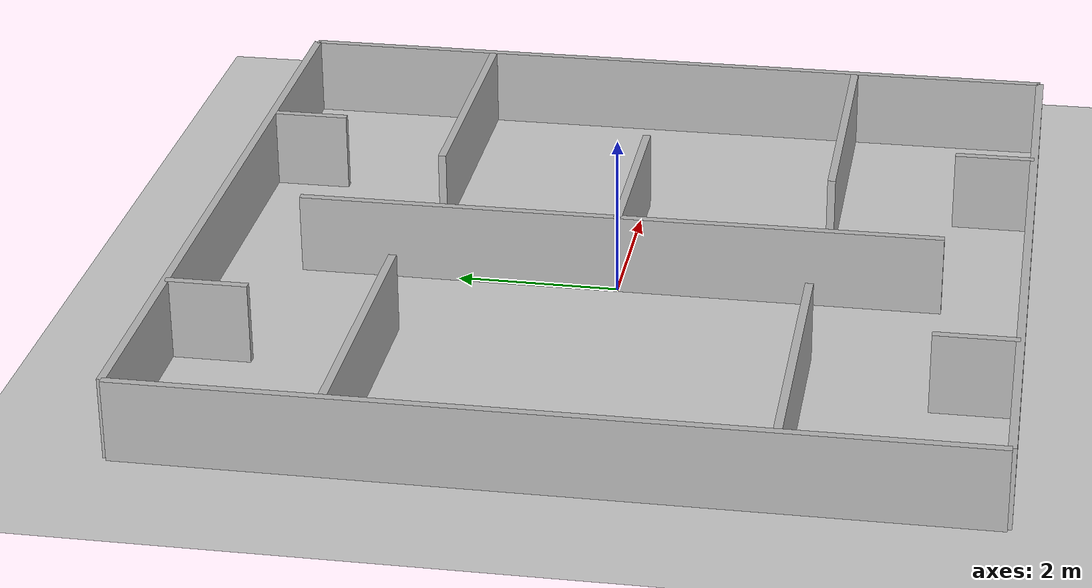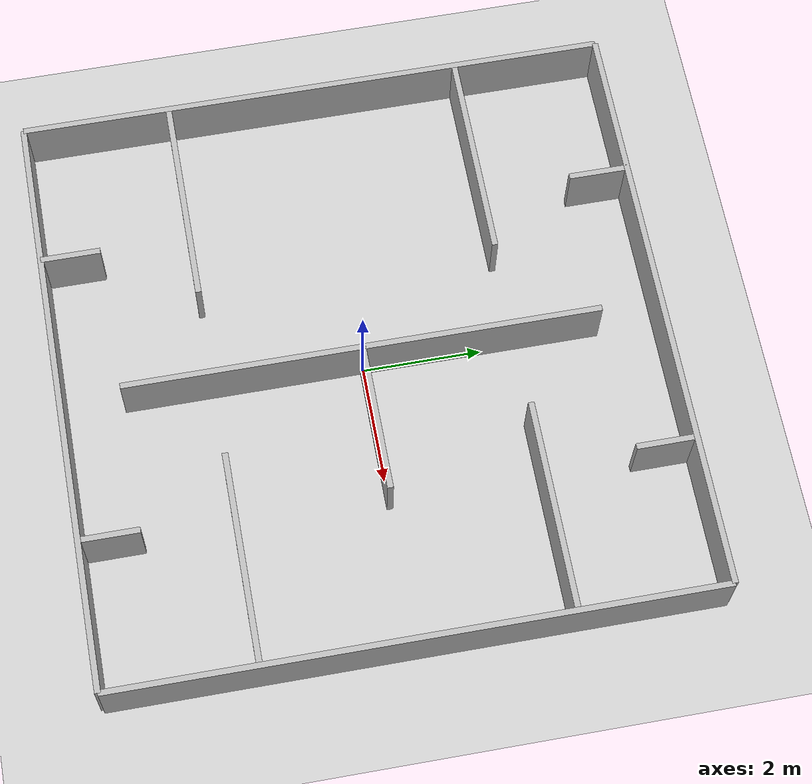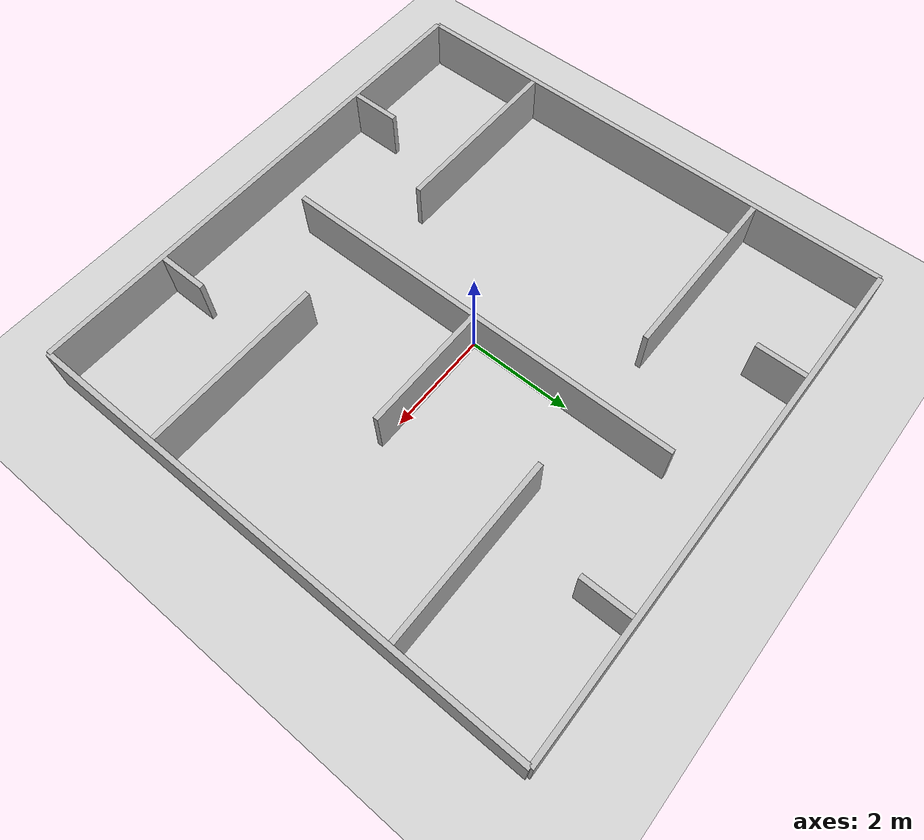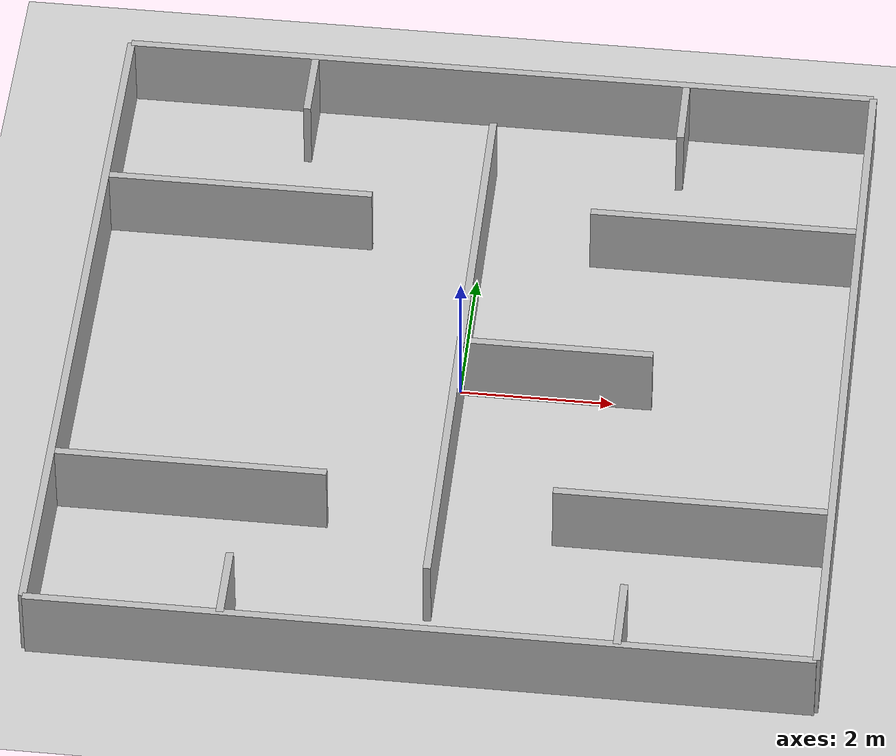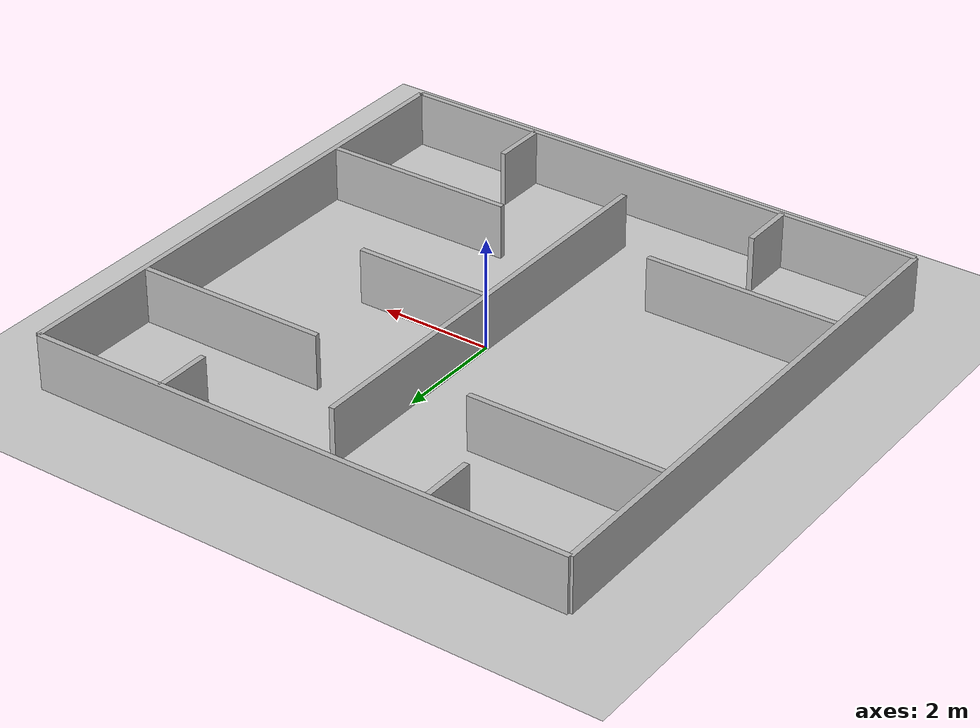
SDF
<?xml version="1.0" ?>
<sdf version="1.8">
<!-- A simple maze world for tag team-->

  <world name="simple_maze">
    <!--Physics and plugins copied from turtlebot3_world.world-->
    <physics type="ode">
      <real_time_update_rate>1000.0</real_time_update_rate>
      <max_step_size>0.001</max_step_size>
      <real_time_factor>1</real_time_factor>
      <ode>
        <solver>
          <type>quick</type>
          <iters>150</iters>
          <precon_iters>0</precon_iters>
          <sor>1.400000</sor>
          <use_dynamic_moi_rescaling>1</use_dynamic_moi_rescaling>
        </solver>
        <constraints>
          <cfm>0.00001</cfm>
          <erp>0.2</erp>
          <contact_max_correcting_vel>2000.000000</contact_max_correcting_vel>
          <contact_surface_layer>0.01000</contact_surface_layer>
        </constraints>
      </ode>
    </physics>
    <plugin
      filename="gz-sim-physics-system"
      name="gz::sim::systems::Physics">
    </plugin>
    <plugin
      filename="gz-sim-user-commands-system"
      name="gz::sim::systems::UserCommands">
    </plugin>
    <plugin
      filename="gz-sim-scene-broadcaster-system"
      name="gz::sim::systems::SceneBroadcaster">
    </plugin>
    <plugin
      filename="gz-sim-sensors-system"
      name="gz::sim::systems::Sensors">
      <render_engine>ogre2</render_engine>
    </plugin>
    <plugin
      filename="gz-sim-imu-system"
      name="gz::sim::systems::Imu">
    </plugin>
    <include>
      <uri>https://fuel.gazebosim.org/1.0/OpenRobotics/models/Sun</uri>
    </include>
    <include>
      <uri>https://fuel.gazebosim.org/1.0/OpenRobotics/models/Ground Plane</uri>
    </include>

    <model name="maze_walls">
      <static>1</static>

      <link name="wall_north">
        <pose>0 5 0.5 0 0 0</pose>
        <visual name="visual"><geometry><box><size>10 0.1 1</size></box></geometry></visual>
        <collision name="collision"><geometry><box><size>10 0.1 1</size></box></geometry></collision>
      </link>
      <link name="wall_south">
        <pose>0 -5 0.5 0 0 0</pose>
        <visual name="visual"><geometry><box><size>10 0.1 1</size></box></geometry></visual>
        <collision name="collision"><geometry><box><size>10 0.1 1</size></box></geometry></collision>
      </link>
      <link name="wall_east">
        <pose>5 0 0.5 0 0 0</pose>
        <visual name="visual"><geometry><box><size>0.1 10 1</size></box></geometry></visual>
        <collision name="collision"><geometry><box><size>0.1 10 1</size></box></geometry></collision>
      </link>
      <link name="wall_west">
        <pose>-5 0 0.5 0 0 0</pose>
        <visual name="visual"><geometry><box><size>0.1 10 1</size></box></geometry></visual>
        <collision name="collision"><geometry><box><size>0.1 10 1</size></box></geometry></collision>
      </link>
      <!--pose -3 . .   and size  4  .  . was too tight-->
      <link name="inner_wall_horiz_top_L">
        <pose>-3.2 2.5 0.5 0 0 0</pose>      <visual name="visual">
          <geometry><box><size>3.5 0.1 1</size></box></geometry> </visual>
        <collision name="collision">
          <geometry><box><size>3.5 0.1 1</size></box></geometry>
        </collision>
      </link>

      <link name="inner_wall_horiz_middle">
        <pose> 1.25 0 0.5 0 0 0</pose>     <visual name="visual">
          <geometry><box><size>2.5 0.1 1</size></box></geometry> </visual>
        <collision name="collision">
          <geometry><box><size>2.5 0.1 1</size></box></geometry>
        </collision>
      </link>
      <!--pose 3 . .   and size  4  .  . was too tight-->
      <link name="inner_wall_horiz_top_R">
        <pose>3.2 2.5 0.5 0 0 0</pose>       <visual name="visual">
          <geometry><box><size>3.5 0.1 1</size></box></geometry> </visual>
        <collision name="collision">
          <geometry><box><size>3.5 0.1 1</size></box></geometry>
        </collision>
      </link>
      <!--pose -3 . .   and size  4  .  . was too tight-->
      <link name="inner_wall_horiz_bottom_L">
        <pose>-3.2 -2.5 0.5 0 0 0</pose>     <visual name="visual">
          <geometry><box><size>3.5 0.1 1</size></box></geometry>
        </visual>
        <collision name="collision">
          <geometry><box><size>3.5 0.1 1</size></box></geometry>
        </collision>
      </link>
      <!--pose 3 . .   and size  4  .  . was too tight-->
      <link name="inner_wall_horiz_bottom_R">
        <pose>3.2 -2.5 0.5 0 0 0</pose>      <visual name="visual">
          <geometry><box><size>3.5 0.1 1</size></box></geometry>
        </visual>
        <collision name="collision">
          <geometry><box><size>3.5 0.1 1</size></box></geometry>
        </collision>
      </link>
      <!--pose . 4.2 .   and size . 1.5  . was too tight-->
      <link name="inner_wall_vert_left_T">
        <pose>-2.5 4.5 0.5 0 0 0</pose>      <visual name="visual">
          <geometry><box><size>0.1 1 1</size></box></geometry> </visual>
        <collision name="collision">
          <geometry><box><size>0.1 1 1</size></box></geometry>
        </collision>
      </link>
      <!--pose . -4.2 .   and size . 1.5  . was too tightr-->
      <link name="inner_wall_vert_left_B">
        <pose>-2.5 -4.5 0.5 0 0 0</pose>     <visual name="visual">
          <geometry><box><size>0.1 1 1</size></box></geometry>
        </visual>
        <collision name="collision">
          <geometry><box><size>0.1 1 1</size></box></geometry>
        </collision>
      </link>

      <link name="inner_wall_vert_middle">
        <pose>0 0 0.5 0 0 0</pose>
        <visual name="visual">
          <geometry><box><size>0.1 8 1</size></box></geometry> </visual>
        <collision name="collision">
          <geometry><box><size>0.1 8 1</size></box></geometry>
        </collision>
      </link>
      <!--pose . 4.2 .   and size . 1.5  . was too tight-->
      <link name="inner_wall_vert_right_T">
        <pose>2.5 4.5 0.5 0 0 0</pose>       <visual name="visual">
          <geometry><box><size>0.1 1 1</size></box></geometry>
        </visual>
        <collision name="collision">
          <geometry><box><size>0.1 1 1</size></box></geometry>
        </collision>
      </link>
      <!--pose . -4.2 .   and size . 1.5  . was too tightr-->
      <link name="inner_wall_vert_right_B">
        <pose>2.5 -4.5 0.5 0 0 0</pose>      <visual name="visual">
          <geometry><box><size>0.1 1 1</size></box></geometry>
        </visual>
        <collision name="collision">
          <geometry><box><size>0.1 1 1</size></box></geometry>
        </collision>
      </link>

    </model>

  </world>
</sdf>
